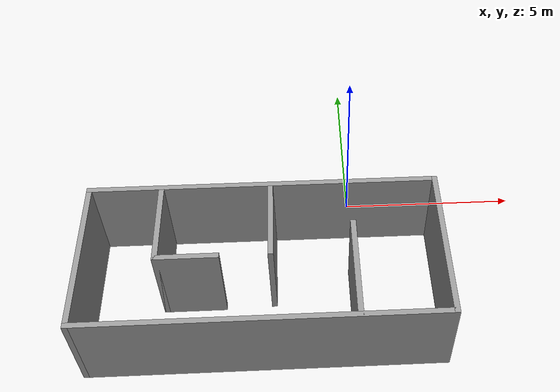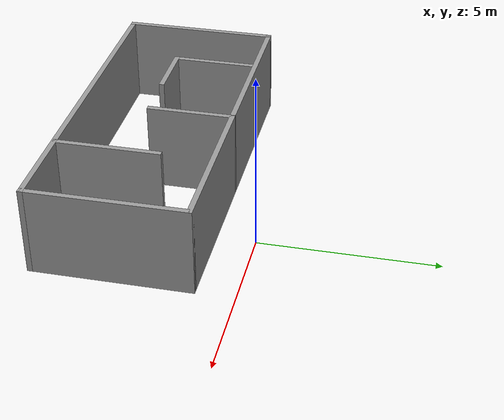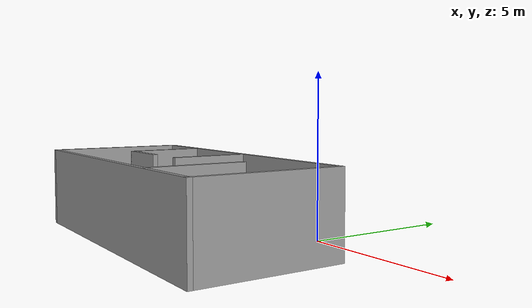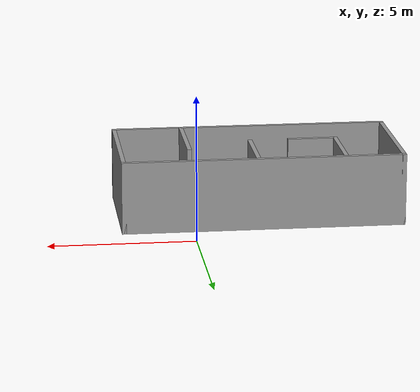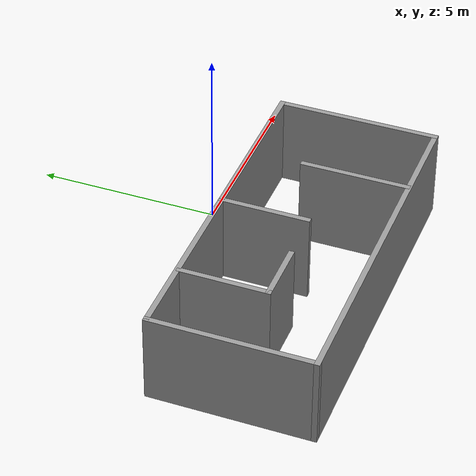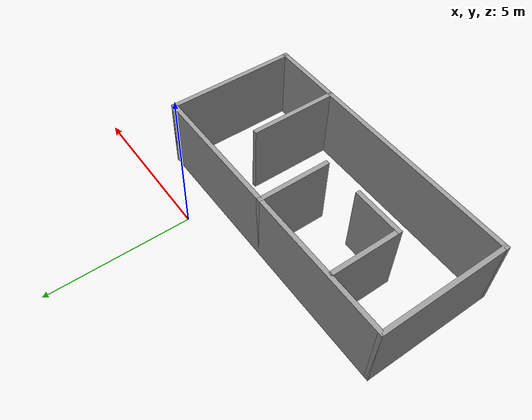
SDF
<?xml version='1.0'?>
<sdf version='1.7'>
  <model name='task1_map'>
    <pose>-2.45 -2.7825 0 0 -0 0</pose>
    <link name='Wall_0'>
      <collision name='Wall_0_Collision'>
        <geometry>
          <box>
            <size>4.5 0.15 2.5</size>
          </box>
        </geometry>
        <pose>0 0 1.25 0 -0 0</pose>
      </collision>
      <visual name='Wall_0_Visual'>
        <pose>0 0 1.25 0 -0 0</pose>
        <geometry>
          <box>
            <size>4.5 0.15 2.5</size>
          </box>
        </geometry>
        <material>
          <script>
            <uri>file://media/materials/scripts/gazebo.material</uri>
            <name>Gazebo/Grey</name>
          </script>
          <ambient>1 1 1 1</ambient>
        </material>
        <meta>
          <layer>0</layer>
        </meta>
      </visual>
      <pose>-4.8 -0.5325 0 0 -0 1.5708</pose>
    </link>
    <link name='Wall_1'>
      <collision name='Wall_1_Collision'>
        <geometry>
          <box>
            <size>9.75 0.15 2.5</size>
          </box>
        </geometry>
        <pose>0 0 1.25 0 -0 0</pose>
      </collision>
      <visual name='Wall_1_Visual'>
        <pose>0 0 1.25 0 -0 0</pose>
        <geometry>
          <box>
            <size>9.75 0.15 2.5</size>
          </box>
        </geometry>
        <material>
          <script>
            <uri>file://media/materials/scripts/gazebo.material</uri>
            <name>Gazebo/Grey</name>
          </script>
          <ambient>1 1 1 1</ambient>
        </material>
        <meta>
          <layer>0</layer>
        </meta>
      </visual>
      <pose>0 1.6425 0 0 -0 0</pose>
    </link>
    <link name='Wall_11'>
      <collision name='Wall_11_Collision'>
        <geometry>
          <box>
            <size>2.5 0.15 2.5</size>
          </box>
        </geometry>
        <pose>0 0 1.25 0 -0 0</pose>
      </collision>
      <visual name='Wall_11_Visual'>
        <pose>0 0 1.25 0 -0 0</pose>
        <geometry>
          <box>
            <size>2.5 0.15 2.5</size>
          </box>
        </geometry>
        <material>
          <script>
            <uri>file://media/materials/scripts/gazebo.material</uri>
            <name>Gazebo/Grey</name>
          </script>
          <ambient>1 1 1 1</ambient>
        </material>
        <meta>
          <layer>0</layer>
        </meta>
      </visual>
      <pose>0.2 0.4675 0 0 -0 -1.5708</pose>
    </link>
    <link name='Wall_2'>
      <collision name='Wall_2_Collision'>
        <geometry>
          <box>
            <size>4.5 0.15 2.5</size>
          </box>
        </geometry>
        <pose>0 0 1.25 0 -0 0</pose>
      </collision>
      <visual name='Wall_2_Visual'>
        <pose>0 0 1.25 0 -0 0</pose>
        <geometry>
          <box>
            <size>4.5 0.15 2.5</size>
          </box>
        </geometry>
        <material>
          <script>
            <uri>file://media/materials/scripts/gazebo.material</uri>
            <name>Gazebo/Grey</name>
          </script>
          <ambient>1 1 1 1</ambient>
        </material>
        <meta>
          <layer>0</layer>
        </meta>
      </visual>
      <pose>4.8 -0.5325 0 0 -0 -1.5708</pose>
    </link>
    <link name='Wall_3'>
      <collision name='Wall_3_Collision'>
        <geometry>
          <box>
            <size>9.75 0.15 2.5</size>
          </box>
        </geometry>
        <pose>0 0 1.25 0 -0 0</pose>
      </collision>
      <visual name='Wall_3_Visual'>
        <pose>0 0 1.25 0 -0 0</pose>
        <geometry>
          <box>
            <size>9.75 0.15 2.5</size>
          </box>
        </geometry>
        <material>
          <script>
            <uri>file://media/materials/scripts/gazebo.material</uri>
            <name>Gazebo/Grey</name>
          </script>
          <ambient>1 1 1 1</ambient>
        </material>
        <meta>
          <layer>0</layer>
        </meta>
      </visual>
      <pose>0 -2.7075 0 0 -0 3.14159</pose>
    </link>
    <link name='Wall_6'>
      <collision name='Wall_6_Collision'>
        <geometry>
          <box>
            <size>3 0.15 2.5</size>
          </box>
        </geometry>
        <pose>0 0 1.25 0 -0 0</pose>
      </collision>
      <visual name='Wall_6_Visual'>
        <pose>0 0 1.25 0 -0 0</pose>
        <geometry>
          <box>
            <size>3 0.15 2.5</size>
          </box>
        </geometry>
        <material>
          <script>
            <uri>file://media/materials/scripts/gazebo.material</uri>
            <name>Gazebo/Grey</name>
          </script>
          <ambient>1 1 1 1</ambient>
        </material>
        <meta>
          <layer>0</layer>
        </meta>
      </visual>
      <pose>2.42 -1.2425 0 0 -0 1.5708</pose>
    </link>
    <link name='Wall_8'>
      <collision name='Wall_8_Collision'>
        <geometry>
          <box>
            <size>2.5 0.15 2.5</size>
          </box>
        </geometry>
        <pose>0 0 1.25 0 -0 0</pose>
      </collision>
      <visual name='Wall_8_Visual'>
        <pose>0 0 1.25 0 -0 0</pose>
        <geometry>
          <box>
            <size>2.5 0.15 2.5</size>
          </box>
        </geometry>
        <material>
          <script>
            <uri>file://media/materials/scripts/gazebo.material</uri>
            <name>Gazebo/Grey</name>
          </script>
          <ambient>1 1 1 1</ambient>
        </material>
        <meta>
          <layer>0</layer>
        </meta>
      </visual>
      <pose>-2.81 0.4175 0 0 -0 -1.5708</pose>
    </link>
    <link name='Wall_9'>
      <collision name='Wall_9_Collision'>
        <geometry>
          <box>
            <size>1.75 0.15 2.5</size>
          </box>
        </geometry>
        <pose>0 0 1.25 0 -0 0</pose>
      </collision>
      <visual name='Wall_9_Visual'>
        <pose>0 0 1.25 0 -0 0</pose>
        <geometry>
          <box>
            <size>1.75 0.15 2.5</size>
          </box>
        </geometry>
        <material>
          <script>
            <uri>file://media/materials/scripts/gazebo.material</uri>
            <name>Gazebo/Grey</name>
          </script>
          <ambient>1 1 1 1</ambient>
        </material>
        <meta>
          <layer>0</layer>
        </meta>
      </visual>
      <pose>-2.01 -0.7575 0 0 -0 0</pose>
    </link>
    <static>1</static>
  </model>
</sdf>
